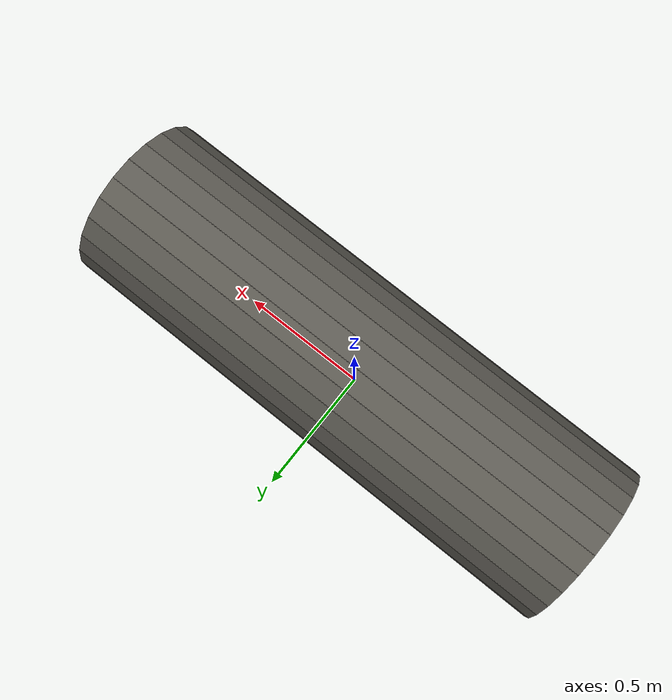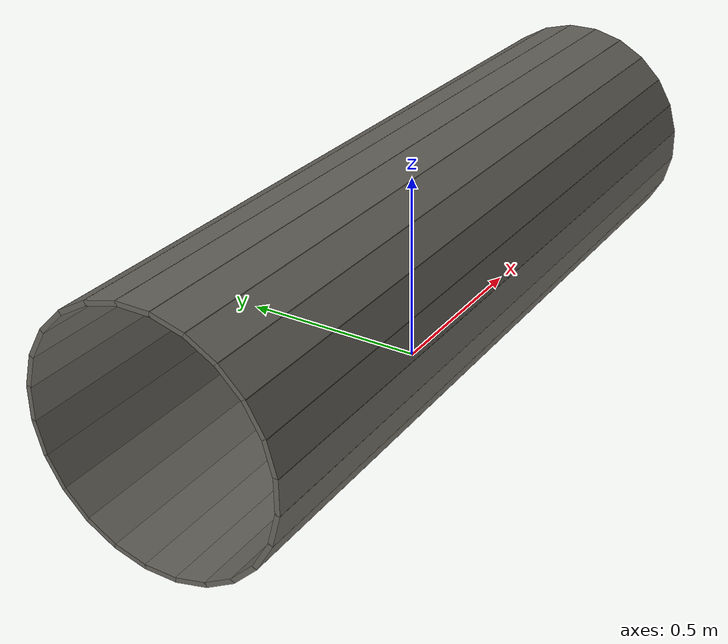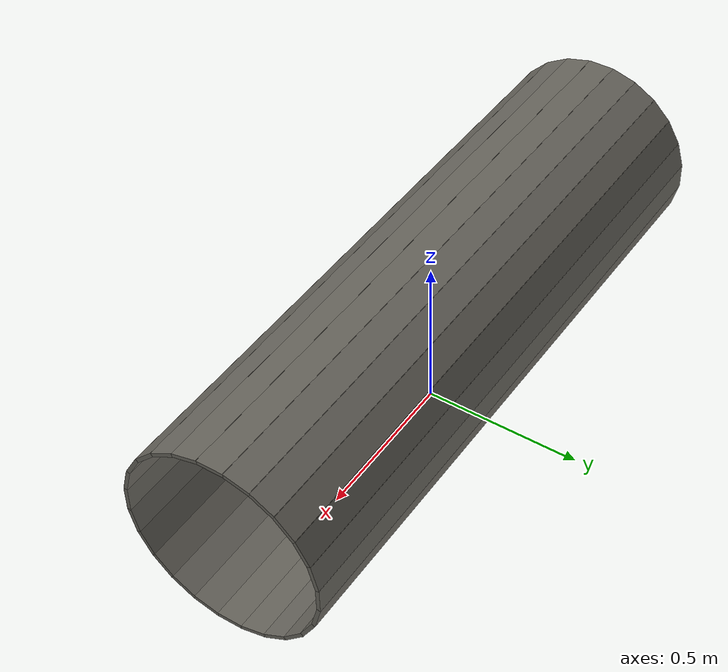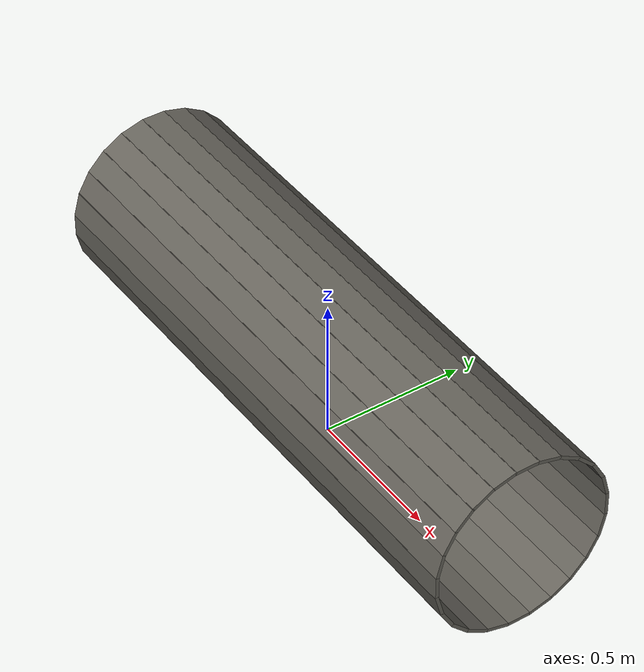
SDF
<?xml version="1.0" ?>
<sdf version="1.8">
  <world name="pipe_world">

    <!-- ===================== Physics & required systems ===================== -->
    <physics name="default_physics" type="ode">
      <max_step_size>0.001</max_step_size>
      <real_time_factor>1.0</real_time_factor>
      <real_time_update_rate>1000</real_time_update_rate>
      <ode>
        <solver>
          <type>quick</type>
          <iters>50</iters>
        </solver>
      </ode>
    </physics>
    <gravity>0 0 -9.81</gravity>

    <plugin filename="gz-sim-physics-system" name="gz::sim::systems::Physics"/>
    <plugin filename="gz-sim-scene-broadcaster-system" name="gz::sim::systems::SceneBroadcaster"/>

    <scene>
      <ambient>0.08 0.08 0.09 1</ambient>
      <background>0.02 0.02 0.03 1</background>
      <shadows>true</shadows>
      <grid>false</grid>
    </scene>

    <light type="directional" name="sun">
      <cast_shadows>true</cast_shadows>
      <pose>0 0 10 0 0 0</pose>
      <diffuse>0.15 0.15 0.15 1</diffuse>
      <specular>0.05 0.05 0.05 1</specular>
      <direction>-0.3 0.1 -0.9</direction>
      <intensity>0.3</intensity>
    </light>

    <!-- Sparse low-intensity inspection lights along the tunnel interior,
         spaced every 0.5m so the scene is not pitch black but still dim. -->
    <light type="point" name="tunnel_light_1">
      <pose>0.25 0 0.0 0 0 0</pose>
      <diffuse>0.3 0.3 0.28 1</diffuse>
      <specular>0.05 0.05 0.05 1</specular>
      <attenuation><range>1.5</range><constant>0.4</constant><linear>0.6</linear><quadratic>0.2</quadratic></attenuation>
      <cast_shadows>false</cast_shadows>
    </light>
    <light type="point" name="tunnel_light_2">
      <pose>1.0 0 0.0 0 0 0</pose>
      <diffuse>0.3 0.3 0.28 1</diffuse>
      <specular>0.05 0.05 0.05 1</specular>
      <attenuation><range>1.5</range><constant>0.4</constant><linear>0.6</linear><quadratic>0.2</quadratic></attenuation>
      <cast_shadows>false</cast_shadows>
    </light>
    <light type="point" name="tunnel_light_3">
      <pose>1.75 0 0.0 0 0 0</pose>
      <diffuse>0.3 0.3 0.28 1</diffuse>
      <specular>0.05 0.05 0.05 1</specular>
      <attenuation><range>1.5</range><constant>0.4</constant><linear>0.6</linear><quadratic>0.2</quadratic></attenuation>
      <cast_shadows>false</cast_shadows>
    </light>

    <model name="pipe_tunnel">
      <static>true</static>
      <pose>0 0 0.3060 0 0 0</pose>
      <link name="tunnel_link">
        <collision name="wall_seg_0_collision">
          <pose>0 0.000000 0.306000 -0.000000 0 0</pose>
          <geometry>
            <box><size>2.0000 0.083794 0.0120</size></box>
          </geometry>
          <surface>
            <friction>
              <ode><mu>0.4</mu><mu2>0.4</mu2></ode>
            </friction>
          </surface>
        </collision>
        <visual name="wall_seg_0_visual">
          <pose>0 0.000000 0.306000 -0.000000 0 0</pose>
          <geometry>
            <box><size>2.0000 0.083794 0.0120</size></box>
          </geometry>
          <material>
            <ambient>0.35 0.34 0.32 1</ambient>
            <diffuse>0.4 0.39 0.36 1</diffuse>
            <specular>0.1 0.1 0.1 1</specular>
          </material>
        </visual>
        <collision name="wall_seg_1_collision">
          <pose>0 0.079199 0.295573 -0.261799 0 0</pose>
          <geometry>
            <box><size>2.0000 0.083794 0.0120</size></box>
          </geometry>
          <surface>
            <friction>
              <ode><mu>0.4</mu><mu2>0.4</mu2></ode>
            </friction>
          </surface>
        </collision>
        <visual name="wall_seg_1_visual">
          <pose>0 0.079199 0.295573 -0.261799 0 0</pose>
          <geometry>
            <box><size>2.0000 0.083794 0.0120</size></box>
          </geometry>
          <material>
            <ambient>0.35 0.34 0.32 1</ambient>
            <diffuse>0.4 0.39 0.36 1</diffuse>
            <specular>0.1 0.1 0.1 1</specular>
          </material>
        </visual>
        <collision name="wall_seg_2_collision">
          <pose>0 0.153000 0.265004 -0.523599 0 0</pose>
          <geometry>
            <box><size>2.0000 0.083794 0.0120</size></box>
          </geometry>
          <surface>
            <friction>
              <ode><mu>0.4</mu><mu2>0.4</mu2></ode>
            </friction>
          </surface>
        </collision>
        <visual name="wall_seg_2_visual">
          <pose>0 0.153000 0.265004 -0.523599 0 0</pose>
          <geometry>
            <box><size>2.0000 0.083794 0.0120</size></box>
          </geometry>
          <material>
            <ambient>0.35 0.34 0.32 1</ambient>
            <diffuse>0.4 0.39 0.36 1</diffuse>
            <specular>0.1 0.1 0.1 1</specular>
          </material>
        </visual>
        <collision name="wall_seg_3_collision">
          <pose>0 0.216375 0.216375 -0.785398 0 0</pose>
          <geometry>
            <box><size>2.0000 0.083794 0.0120</size></box>
          </geometry>
          <surface>
            <friction>
              <ode><mu>0.4</mu><mu2>0.4</mu2></ode>
            </friction>
          </surface>
        </collision>
        <visual name="wall_seg_3_visual">
          <pose>0 0.216375 0.216375 -0.785398 0 0</pose>
          <geometry>
            <box><size>2.0000 0.083794 0.0120</size></box>
          </geometry>
          <material>
            <ambient>0.35 0.34 0.32 1</ambient>
            <diffuse>0.4 0.39 0.36 1</diffuse>
            <specular>0.1 0.1 0.1 1</specular>
          </material>
        </visual>
        <collision name="wall_seg_4_collision">
          <pose>0 0.265004 0.153000 -1.047198 0 0</pose>
          <geometry>
            <box><size>2.0000 0.083794 0.0120</size></box>
          </geometry>
          <surface>
            <friction>
              <ode><mu>0.4</mu><mu2>0.4</mu2></ode>
            </friction>
          </surface>
        </collision>
        <visual name="wall_seg_4_visual">
          <pose>0 0.265004 0.153000 -1.047198 0 0</pose>
          <geometry>
            <box><size>2.0000 0.083794 0.0120</size></box>
          </geometry>
          <material>
            <ambient>0.35 0.34 0.32 1</ambient>
            <diffuse>0.4 0.39 0.36 1</diffuse>
            <specular>0.1 0.1 0.1 1</specular>
          </material>
        </visual>
        <collision name="wall_seg_5_collision">
          <pose>0 0.295573 0.079199 -1.308997 0 0</pose>
          <geometry>
            <box><size>2.0000 0.083794 0.0120</size></box>
          </geometry>
          <surface>
            <friction>
              <ode><mu>0.4</mu><mu2>0.4</mu2></ode>
            </friction>
          </surface>
        </collision>
        <visual name="wall_seg_5_visual">
          <pose>0 0.295573 0.079199 -1.308997 0 0</pose>
          <geometry>
            <box><size>2.0000 0.083794 0.0120</size></box>
          </geometry>
          <material>
            <ambient>0.35 0.34 0.32 1</ambient>
            <diffuse>0.4 0.39 0.36 1</diffuse>
            <specular>0.1 0.1 0.1 1</specular>
          </material>
        </visual>
        <collision name="wall_seg_6_collision">
          <pose>0 0.306000 0.000000 -1.570796 0 0</pose>
          <geometry>
            <box><size>2.0000 0.083794 0.0120</size></box>
          </geometry>
          <surface>
            <friction>
              <ode><mu>0.4</mu><mu2>0.4</mu2></ode>
            </friction>
          </surface>
        </collision>
        <visual name="wall_seg_6_visual">
          <pose>0 0.306000 0.000000 -1.570796 0 0</pose>
          <geometry>
            <box><size>2.0000 0.083794 0.0120</size></box>
          </geometry>
          <material>
            <ambient>0.35 0.34 0.32 1</ambient>
            <diffuse>0.4 0.39 0.36 1</diffuse>
            <specular>0.1 0.1 0.1 1</specular>
          </material>
        </visual>
        <collision name="wall_seg_7_collision">
          <pose>0 0.295573 -0.079199 -1.832596 0 0</pose>
          <geometry>
            <box><size>2.0000 0.083794 0.0120</size></box>
          </geometry>
          <surface>
            <friction>
              <ode><mu>0.4</mu><mu2>0.4</mu2></ode>
            </friction>
          </surface>
        </collision>
        <visual name="wall_seg_7_visual">
          <pose>0 0.295573 -0.079199 -1.832596 0 0</pose>
          <geometry>
            <box><size>2.0000 0.083794 0.0120</size></box>
          </geometry>
          <material>
            <ambient>0.35 0.34 0.32 1</ambient>
            <diffuse>0.4 0.39 0.36 1</diffuse>
            <specular>0.1 0.1 0.1 1</specular>
          </material>
        </visual>
        <collision name="wall_seg_8_collision">
          <pose>0 0.265004 -0.153000 -2.094395 0 0</pose>
          <geometry>
            <box><size>2.0000 0.083794 0.0120</size></box>
          </geometry>
          <surface>
            <friction>
              <ode><mu>0.4</mu><mu2>0.4</mu2></ode>
            </friction>
          </surface>
        </collision>
        <visual name="wall_seg_8_visual">
          <pose>0 0.265004 -0.153000 -2.094395 0 0</pose>
          <geometry>
            <box><size>2.0000 0.083794 0.0120</size></box>
          </geometry>
          <material>
            <ambient>0.35 0.34 0.32 1</ambient>
            <diffuse>0.4 0.39 0.36 1</diffuse>
            <specular>0.1 0.1 0.1 1</specular>
          </material>
        </visual>
        <collision name="wall_seg_9_collision">
          <pose>0 0.216375 -0.216375 -2.356194 0 0</pose>
          <geometry>
            <box><size>2.0000 0.083794 0.0120</size></box>
          </geometry>
          <surface>
            <friction>
              <ode><mu>0.4</mu><mu2>0.4</mu2></ode>
            </friction>
          </surface>
        </collision>
        <visual name="wall_seg_9_visual">
          <pose>0 0.216375 -0.216375 -2.356194 0 0</pose>
          <geometry>
            <box><size>2.0000 0.083794 0.0120</size></box>
          </geometry>
          <material>
            <ambient>0.35 0.34 0.32 1</ambient>
            <diffuse>0.4 0.39 0.36 1</diffuse>
            <specular>0.1 0.1 0.1 1</specular>
          </material>
        </visual>
        <collision name="wall_seg_10_collision">
          <pose>0 0.153000 -0.265004 -2.617994 0 0</pose>
          <geometry>
            <box><size>2.0000 0.083794 0.0120</size></box>
          </geometry>
          <surface>
            <friction>
              <ode><mu>0.4</mu><mu2>0.4</mu2></ode>
            </friction>
          </surface>
        </collision>
        <visual name="wall_seg_10_visual">
          <pose>0 0.153000 -0.265004 -2.617994 0 0</pose>
          <geometry>
            <box><size>2.0000 0.083794 0.0120</size></box>
          </geometry>
          <material>
            <ambient>0.35 0.34 0.32 1</ambient>
            <diffuse>0.4 0.39 0.36 1</diffuse>
            <specular>0.1 0.1 0.1 1</specular>
          </material>
        </visual>
        <collision name="wall_seg_11_collision">
          <pose>0 0.079199 -0.295573 -2.879793 0 0</pose>
          <geometry>
            <box><size>2.0000 0.083794 0.0120</size></box>
          </geometry>
          <surface>
            <friction>
              <ode><mu>0.4</mu><mu2>0.4</mu2></ode>
            </friction>
          </surface>
        </collision>
        <visual name="wall_seg_11_visual">
          <pose>0 0.079199 -0.295573 -2.879793 0 0</pose>
          <geometry>
            <box><size>2.0000 0.083794 0.0120</size></box>
          </geometry>
          <material>
            <ambient>0.35 0.34 0.32 1</ambient>
            <diffuse>0.4 0.39 0.36 1</diffuse>
            <specular>0.1 0.1 0.1 1</specular>
          </material>
        </visual>
        <collision name="wall_seg_12_collision">
          <pose>0 0.000000 -0.306000 -3.141593 0 0</pose>
          <geometry>
            <box><size>2.0000 0.083794 0.0120</size></box>
          </geometry>
          <surface>
            <friction>
              <ode><mu>0.4</mu><mu2>0.4</mu2></ode>
            </friction>
          </surface>
        </collision>
        <visual name="wall_seg_12_visual">
          <pose>0 0.000000 -0.306000 -3.141593 0 0</pose>
          <geometry>
            <box><size>2.0000 0.083794 0.0120</size></box>
          </geometry>
          <material>
            <ambient>0.35 0.34 0.32 1</ambient>
            <diffuse>0.4 0.39 0.36 1</diffuse>
            <specular>0.1 0.1 0.1 1</specular>
          </material>
        </visual>
        <collision name="wall_seg_13_collision">
          <pose>0 -0.079199 -0.295573 -3.403392 0 0</pose>
          <geometry>
            <box><size>2.0000 0.083794 0.0120</size></box>
          </geometry>
          <surface>
            <friction>
              <ode><mu>0.4</mu><mu2>0.4</mu2></ode>
            </friction>
          </surface>
        </collision>
        <visual name="wall_seg_13_visual">
          <pose>0 -0.079199 -0.295573 -3.403392 0 0</pose>
          <geometry>
            <box><size>2.0000 0.083794 0.0120</size></box>
          </geometry>
          <material>
            <ambient>0.35 0.34 0.32 1</ambient>
            <diffuse>0.4 0.39 0.36 1</diffuse>
            <specular>0.1 0.1 0.1 1</specular>
          </material>
        </visual>
        <collision name="wall_seg_14_collision">
          <pose>0 -0.153000 -0.265004 -3.665191 0 0</pose>
          <geometry>
            <box><size>2.0000 0.083794 0.0120</size></box>
          </geometry>
          <surface>
            <friction>
              <ode><mu>0.4</mu><mu2>0.4</mu2></ode>
            </friction>
          </surface>
        </collision>
        <visual name="wall_seg_14_visual">
          <pose>0 -0.153000 -0.265004 -3.665191 0 0</pose>
          <geometry>
            <box><size>2.0000 0.083794 0.0120</size></box>
          </geometry>
          <material>
            <ambient>0.35 0.34 0.32 1</ambient>
            <diffuse>0.4 0.39 0.36 1</diffuse>
            <specular>0.1 0.1 0.1 1</specular>
          </material>
        </visual>
        <collision name="wall_seg_15_collision">
          <pose>0 -0.216375 -0.216375 -3.926991 0 0</pose>
          <geometry>
            <box><size>2.0000 0.083794 0.0120</size></box>
          </geometry>
          <surface>
            <friction>
              <ode><mu>0.4</mu><mu2>0.4</mu2></ode>
            </friction>
          </surface>
        </collision>
        <visual name="wall_seg_15_visual">
          <pose>0 -0.216375 -0.216375 -3.926991 0 0</pose>
          <geometry>
            <box><size>2.0000 0.083794 0.0120</size></box>
          </geometry>
          <material>
            <ambient>0.35 0.34 0.32 1</ambient>
            <diffuse>0.4 0.39 0.36 1</diffuse>
            <specular>0.1 0.1 0.1 1</specular>
          </material>
        </visual>
        <collision name="wall_seg_16_collision">
          <pose>0 -0.265004 -0.153000 -4.188790 0 0</pose>
          <geometry>
            <box><size>2.0000 0.083794 0.0120</size></box>
          </geometry>
          <surface>
            <friction>
              <ode><mu>0.4</mu><mu2>0.4</mu2></ode>
            </friction>
          </surface>
        </collision>
        <visual name="wall_seg_16_visual">
          <pose>0 -0.265004 -0.153000 -4.188790 0 0</pose>
          <geometry>
            <box><size>2.0000 0.083794 0.0120</size></box>
          </geometry>
          <material>
            <ambient>0.35 0.34 0.32 1</ambient>
            <diffuse>0.4 0.39 0.36 1</diffuse>
            <specular>0.1 0.1 0.1 1</specular>
          </material>
        </visual>
        <collision name="wall_seg_17_collision">
          <pose>0 -0.295573 -0.079199 -4.450590 0 0</pose>
          <geometry>
            <box><size>2.0000 0.083794 0.0120</size></box>
          </geometry>
          <surface>
            <friction>
              <ode><mu>0.4</mu><mu2>0.4</mu2></ode>
            </friction>
          </surface>
        </collision>
        <visual name="wall_seg_17_visual">
          <pose>0 -0.295573 -0.079199 -4.450590 0 0</pose>
          <geometry>
            <box><size>2.0000 0.083794 0.0120</size></box>
          </geometry>
          <material>
            <ambient>0.35 0.34 0.32 1</ambient>
            <diffuse>0.4 0.39 0.36 1</diffuse>
            <specular>0.1 0.1 0.1 1</specular>
          </material>
        </visual>
        <collision name="wall_seg_18_collision">
          <pose>0 -0.306000 -0.000000 -4.712389 0 0</pose>
          <geometry>
            <box><size>2.0000 0.083794 0.0120</size></box>
          </geometry>
          <surface>
            <friction>
              <ode><mu>0.4</mu><mu2>0.4</mu2></ode>
            </friction>
          </surface>
        </collision>
        <visual name="wall_seg_18_visual">
          <pose>0 -0.306000 -0.000000 -4.712389 0 0</pose>
          <geometry>
            <box><size>2.0000 0.083794 0.0120</size></box>
          </geometry>
          <material>
            <ambient>0.35 0.34 0.32 1</ambient>
            <diffuse>0.4 0.39 0.36 1</diffuse>
            <specular>0.1 0.1 0.1 1</specular>
          </material>
        </visual>
        <collision name="wall_seg_19_collision">
          <pose>0 -0.295573 0.079199 -4.974188 0 0</pose>
          <geometry>
            <box><size>2.0000 0.083794 0.0120</size></box>
          </geometry>
          <surface>
            <friction>
              <ode><mu>0.4</mu><mu2>0.4</mu2></ode>
            </friction>
          </surface>
        </collision>
        <visual name="wall_seg_19_visual">
          <pose>0 -0.295573 0.079199 -4.974188 0 0</pose>
          <geometry>
            <box><size>2.0000 0.083794 0.0120</size></box>
          </geometry>
          <material>
            <ambient>0.35 0.34 0.32 1</ambient>
            <diffuse>0.4 0.39 0.36 1</diffuse>
            <specular>0.1 0.1 0.1 1</specular>
          </material>
        </visual>
        <collision name="wall_seg_20_collision">
          <pose>0 -0.265004 0.153000 -5.235988 0 0</pose>
          <geometry>
            <box><size>2.0000 0.083794 0.0120</size></box>
          </geometry>
          <surface>
            <friction>
              <ode><mu>0.4</mu><mu2>0.4</mu2></ode>
            </friction>
          </surface>
        </collision>
        <visual name="wall_seg_20_visual">
          <pose>0 -0.265004 0.153000 -5.235988 0 0</pose>
          <geometry>
            <box><size>2.0000 0.083794 0.0120</size></box>
          </geometry>
          <material>
            <ambient>0.35 0.34 0.32 1</ambient>
            <diffuse>0.4 0.39 0.36 1</diffuse>
            <specular>0.1 0.1 0.1 1</specular>
          </material>
        </visual>
        <collision name="wall_seg_21_collision">
          <pose>0 -0.216375 0.216375 -5.497787 0 0</pose>
          <geometry>
            <box><size>2.0000 0.083794 0.0120</size></box>
          </geometry>
          <surface>
            <friction>
              <ode><mu>0.4</mu><mu2>0.4</mu2></ode>
            </friction>
          </surface>
        </collision>
        <visual name="wall_seg_21_visual">
          <pose>0 -0.216375 0.216375 -5.497787 0 0</pose>
          <geometry>
            <box><size>2.0000 0.083794 0.0120</size></box>
          </geometry>
          <material>
            <ambient>0.35 0.34 0.32 1</ambient>
            <diffuse>0.4 0.39 0.36 1</diffuse>
            <specular>0.1 0.1 0.1 1</specular>
          </material>
        </visual>
        <collision name="wall_seg_22_collision">
          <pose>0 -0.153000 0.265004 -5.759587 0 0</pose>
          <geometry>
            <box><size>2.0000 0.083794 0.0120</size></box>
          </geometry>
          <surface>
            <friction>
              <ode><mu>0.4</mu><mu2>0.4</mu2></ode>
            </friction>
          </surface>
        </collision>
        <visual name="wall_seg_22_visual">
          <pose>0 -0.153000 0.265004 -5.759587 0 0</pose>
          <geometry>
            <box><size>2.0000 0.083794 0.0120</size></box>
          </geometry>
          <material>
            <ambient>0.35 0.34 0.32 1</ambient>
            <diffuse>0.4 0.39 0.36 1</diffuse>
            <specular>0.1 0.1 0.1 1</specular>
          </material>
        </visual>
        <collision name="wall_seg_23_collision">
          <pose>0 -0.079199 0.295573 -6.021386 0 0</pose>
          <geometry>
            <box><size>2.0000 0.083794 0.0120</size></box>
          </geometry>
          <surface>
            <friction>
              <ode><mu>0.4</mu><mu2>0.4</mu2></ode>
            </friction>
          </surface>
        </collision>
        <visual name="wall_seg_23_visual">
          <pose>0 -0.079199 0.295573 -6.021386 0 0</pose>
          <geometry>
            <box><size>2.0000 0.083794 0.0120</size></box>
          </geometry>
          <material>
            <ambient>0.35 0.34 0.32 1</ambient>
            <diffuse>0.4 0.39 0.36 1</diffuse>
            <specular>0.1 0.1 0.1 1</specular>
          </material>
        </visual>
      </link>
    </model>

    <model name="drift_scene_view">
      <static>true</static>
      <pose>3 0 2 0 0.34 3.14159</pose>
      <link name="link">
        <sensor type="camera" name="drift_scene_view_camera">
          <topic>/drift/scene_view</topic>
          <always_on>1</always_on>
          <update_rate>30</update_rate>
          <camera>
            <horizontal_fov>1.0472</horizontal_fov>
            <image>
              <width>800</width>
              <height>600</height>
              <format>R8G8B8</format>
            </image>
            <clip>
              <near>0.05</near>
              <far>100</far>
            </clip>
          </camera>
        </sensor>
      </link>
    </model>

    <plugin filename="gz-sim-sensors-system" name="gz::sim::systems::Sensors">
      <render_engine>ogre2</render_engine>
    </plugin>

    <!-- Required for the AGOS IMU (agos_imu) to actually publish data on
         imu/data -- without this world-level system plugin, the IMU sensor
         topic exists but stays silent. -->
    <plugin filename="gz-sim-imu-system" name="gz::sim::systems::Imu"/>
</world>
</sdf>
